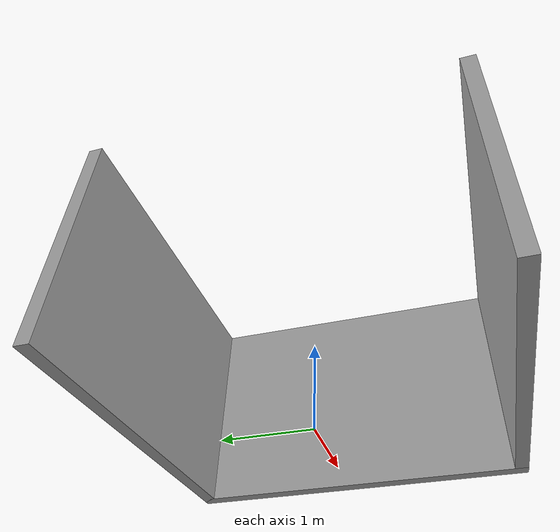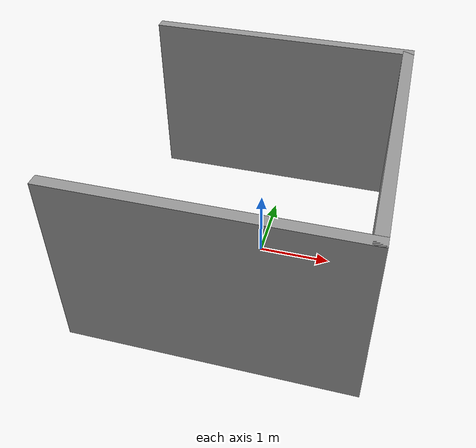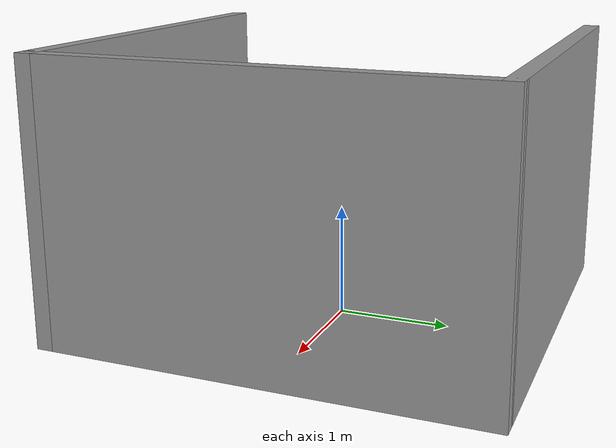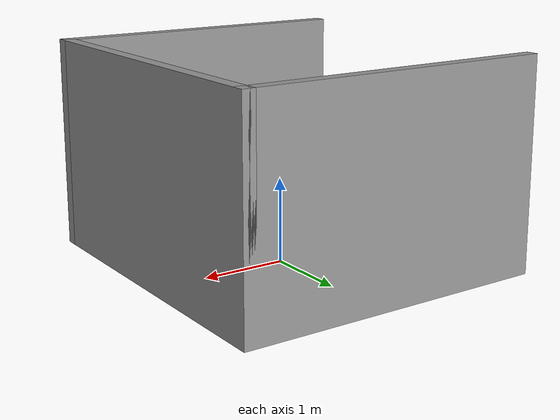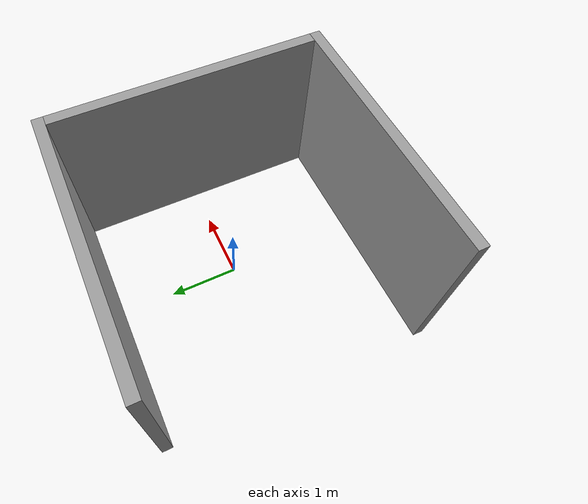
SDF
<?xml version='1.0'?>
<sdf version='1.6'>
  <model name='Untitled'>
    <pose frame=''>-0.162428 -0.086633 0 0 -0 0</pose>
    <link name='Wall_23'>
      <collision name='Wall_23_Collision'>
        <geometry>
          <box>
            <size>3.75 0.15 2.5</size>
          </box>
        </geometry>
        <pose frame=''>0 0 1.25 0 -0 0</pose>
      </collision>
      <visual name='Wall_23_Visual'>
        <pose frame=''>0 0 1.25 0 -0 0</pose>
        <geometry>
          <box>
            <size>3.75 0.15 2.5</size>
          </box>
        </geometry>
        <material>
          <script>
            <uri>file://media/materials/scripts/gazebo.material</uri>
            <name>Gazebo/Grey</name>
          </script>
          <ambient>1 1 1 1</ambient>
        </material>
        <meta>
          <layer>0</layer>
        </meta>
      </visual>
      <pose frame=''>-0 1.925 0 0 -0 0</pose>
    </link>
    <link name='Wall_24'>
      <collision name='Wall_24_Collision'>
        <geometry>
          <box>
            <size>4 0.15 2.5</size>
          </box>
        </geometry>
        <pose frame=''>0 0 1.25 0 -0 0</pose>
      </collision>
      <visual name='Wall_24_Visual'>
        <pose frame=''>0 0 1.25 0 -0 0</pose>
        <geometry>
          <box>
            <size>4 0.15 2.5</size>
          </box>
        </geometry>
        <material>
          <script>
            <uri>file://media/materials/scripts/gazebo.material</uri>
            <name>Gazebo/Grey</name>
          </script>
          <ambient>1 1 1 1</ambient>
        </material>
        <meta>
          <layer>0</layer>
        </meta>
      </visual>
      <pose frame=''>1.8 0 0 0 -0 -1.5708</pose>
    </link>
    <link name='Wall_25'>
      <collision name='Wall_25_Collision'>
        <geometry>
          <box>
            <size>3.75 0.15 2.5</size>
          </box>
        </geometry>
        <pose frame=''>0 0 1.25 0 -0 0</pose>
      </collision>
      <visual name='Wall_25_Visual'>
        <pose frame=''>0 0 1.25 0 -0 0</pose>
        <geometry>
          <box>
            <size>3.75 0.15 2.5</size>
          </box>
        </geometry>
        <material>
          <script>
            <uri>file://media/materials/scripts/gazebo.material</uri>
            <name>Gazebo/Grey</name>
          </script>
          <ambient>1 1 1 1</ambient>
        </material>
        <meta>
          <layer>0</layer>
        </meta>
      </visual>
      <pose frame=''>-0 -1.925 0 0 -0 3.14159</pose>
    </link>
    <static>1</static>
  </model>
</sdf>
